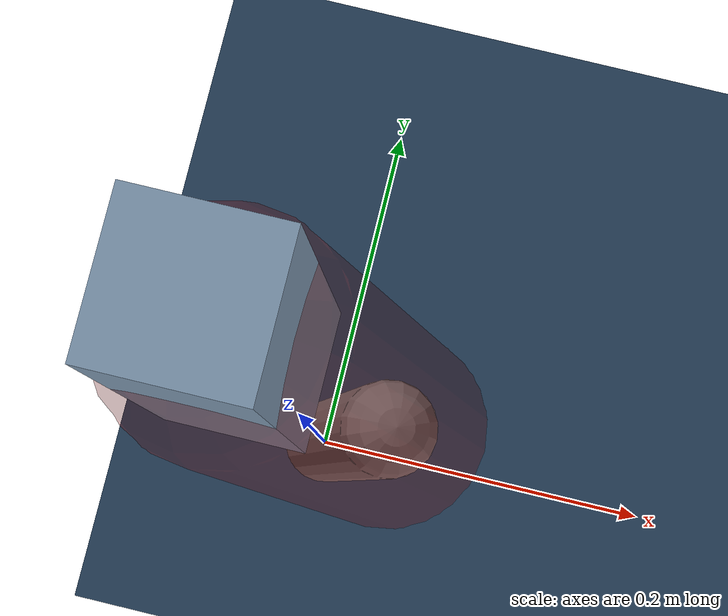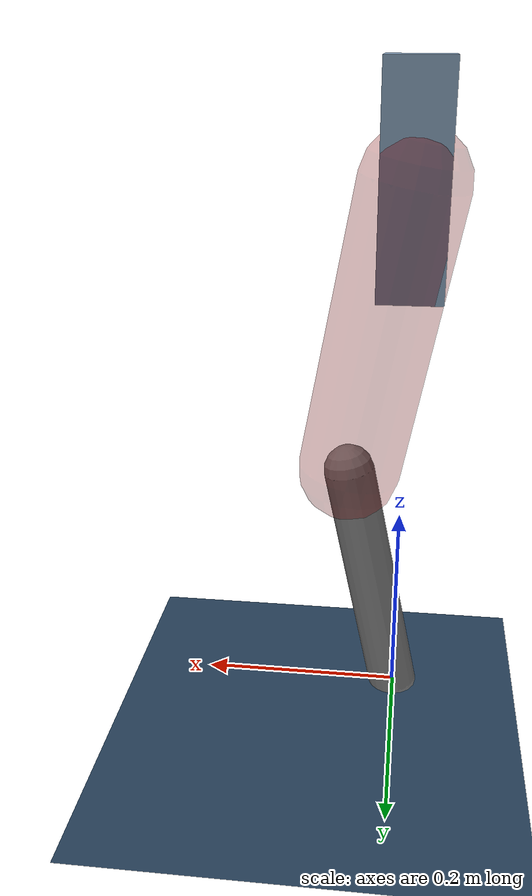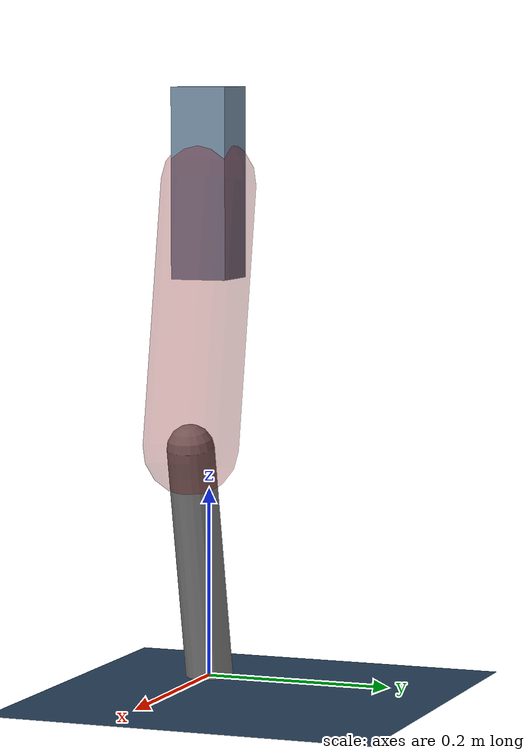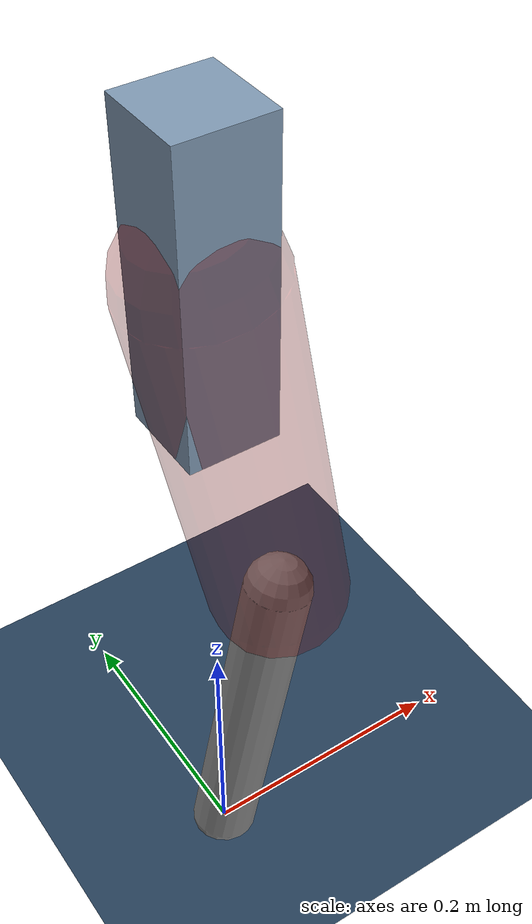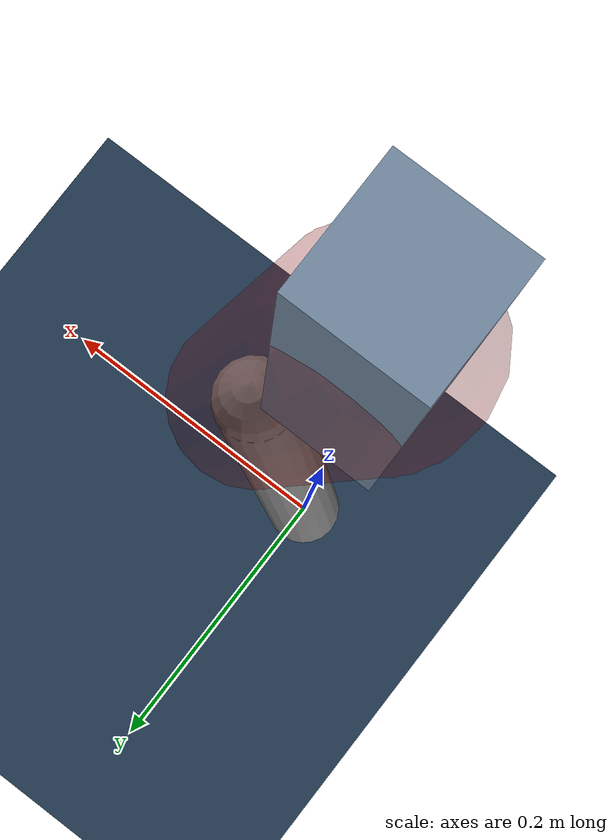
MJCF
<mujoco model="Hopper2D">
	<compiler inertiafromgeom="true" angle="radian" />
	<option timestep="0.001" integrator="implicit" cone="elliptic" solver="Newton" tolerance="1e-10" />

	<default>
		<geom contype="1" conaffinity="1" condim="3" friction="2 0.005 0.0001" solref="0.005 1" />
		<joint limited="true" damping="0.1" />
	</default>

	<asset>
		<texture name="skybox" type="skybox" builtin="gradient" rgb1=".4 .6 .8" rgb2="0 0 0" width="800" height="800" />
		<texture name="grid" type="2d" builtin="checker" rgb1=".1 .2 .3" rgb2=".2 .3 .4" width="300" height="300" mark="edge" markrgb=".2 .3 .4" />
		<material name="ground" texture="grid" texrepeat="1 1" texuniform="true" reflectance="0.1" />
		<material name="leg" rgba="0.5 0.6 0.7 1" />
	</asset>

	<worldbody>

		<geom name="floor" type="plane" size="5 5 0.25" material="ground" />

		<light directional="false" diffuse="0.8 0.8 0.8" specular="0.3 0.3 0.3" pos="0 0 2" dir="0 0 -1" />
		<light mode="targetbodycom" target="base" directional="false" diffuse="0.8 0.8 0.8" specular="0.3 0.3 0.3" pos="0 0 2" dir="0 0 -1" />

		<camera name="fixed" pos="0 -2 1" xyaxes="1 0 0 0 0 1" />
		<camera name="tracking" mode="trackcom" pos="0 -3 1" />

		<body name="root" pos="0 0 0.5221394183669051">
			<joint name="slide_x" type="slide" axis="1 0 0" range="-100 100" />
			<joint name="slide_z" type="slide" axis="0 0 1" range="0 10" />

			<body name="base" pos="0 0 0">
				<geom name="torso" type="box" size="0.03 0.03 0.1" mass="1.817" material="leg" />

				<body name="link1" pos="0 0 0" euler="0 1.3856334211413526 0">
					<joint type="hinge" axis="0 -1 0" pos="0 0 0" name="hinge1" limited="true" range="-3.14 3.14" stiffness="0" damping="0.1" />
					<geom name="thigh" type="capsule" fromto="0 0 0 0.27853675093754926 0 0" size="0.05" rgba="0.5 0 0 0.3" mass="0.931249227531383" />

					<body name="link2" pos="0.27853675093754926 0 0" euler="0 0.3887748045086419 0">
						<joint type="hinge" axis="0 -1 0" pos="0 0 0" name="hinge2" limited="true" range="-3.14 3.14" stiffness="0" damping="0.1" />
						<geom name="shank" type="capsule" fromto="0 0 0 0.2536026674293559 0 0" size="0.025" mass="0.4454821339434847" />

					</body>
				</body>
			</body>
		</body>
	</worldbody>

	<actuator>
		<motor name="torque1" joint="hinge1" ctrlrange="-23.458621616617048 23.458621616617048" ctrllimited="true" gear="1" />
		<motor name="torque2" joint="hinge2" ctrlrange="-65.66953094854192 65.66953094854192" ctrllimited="true" gear="1" />
	</actuator>
</mujoco>
